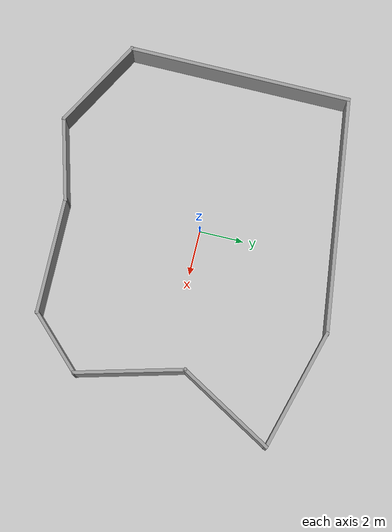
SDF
<?xml version='1.0'?>
<sdf version='1.7'>
  <model name='new_world'>
    <pose>0.899912 -0.207322 0 0 -0 0</pose>
    <link name='Wall_0'>
      <collision name='Wall_0_Collision'>
        <geometry>
          <box>
            <size>10 0.15 2.5</size>
          </box>
        </geometry>
        <pose>0 0 1.25 0 -0 0</pose>
      </collision>
      <visual name='Wall_0_Visual'>
        <pose>0 0 1.25 0 -0 0</pose>
        <geometry>
          <box>
            <size>10 0.15 2.5</size>
          </box>
        </geometry>
        <material>
          <script>
            <uri>file://media/materials/scripts/gazebo.material</uri>
            <name>Gazebo/Grey</name>
          </script>
          <ambient>1 1 1 1</ambient>
        </material>
        <meta>
          <layer>0</layer>
        </meta>
      </visual>
      <pose>-7.85315 0.376233 0 0 -0 1.5708</pose>
    </link>
    <link name='Wall_2'>
      <collision name='Wall_2_Collision'>
        <geometry>
          <box>
            <size>4.5 0.15 2.5</size>
          </box>
        </geometry>
        <pose>0 0 1.25 0 -0 0</pose>
      </collision>
      <visual name='Wall_2_Visual'>
        <pose>0 0 1.25 0 -0 0</pose>
        <geometry>
          <box>
            <size>4.5 0.15 2.5</size>
          </box>
        </geometry>
        <material>
          <script>
            <uri>file://media/materials/scripts/gazebo.material</uri>
            <name>Gazebo/Grey</name>
          </script>
          <ambient>1 1 1 1</ambient>
        </material>
        <meta>
          <layer>0</layer>
        </meta>
      </visual>
      <pose>-5.96955 -5.63627 0 0 -0 -0.523599</pose>
    </link>
    <link name='Wall_3'>
      <collision name='Wall_3_Collision'>
        <geometry>
          <box>
            <size>3.75 0.15 2.5</size>
          </box>
        </geometry>
        <pose>0 0 1.25 0 -0 0</pose>
      </collision>
      <visual name='Wall_3_Visual'>
        <pose>0 0 1.25 0 -0 0</pose>
        <geometry>
          <box>
            <size>3.75 0.15 2.5</size>
          </box>
        </geometry>
        <material>
          <script>
            <uri>file://media/materials/scripts/gazebo.material</uri>
            <name>Gazebo/Grey</name>
          </script>
          <ambient>1 1 1 1</ambient>
        </material>
        <meta>
          <layer>0</layer>
        </meta>
      </visual>
      <pose>-2.34727 -6.25789 0 0 -0 0.261799</pose>
    </link>
    <link name='Wall_4'>
      <collision name='Wall_4_Collision'>
        <geometry>
          <box>
            <size>5.25 0.15 2.5</size>
          </box>
        </geometry>
        <pose>0 0 1.25 0 -0 0</pose>
      </collision>
      <visual name='Wall_4_Visual'>
        <pose>0 0 1.25 0 -0 0</pose>
        <geometry>
          <box>
            <size>5.25 0.15 2.5</size>
          </box>
        </geometry>
        <material>
          <script>
            <uri>file://media/materials/scripts/gazebo.material</uri>
            <name>Gazebo/Grey</name>
          </script>
          <ambient>1 1 1 1</ambient>
        </material>
        <meta>
          <layer>0</layer>
        </meta>
      </visual>
      <pose>1.94139 -5.79202 0 0 -0 0</pose>
    </link>
    <link name='Wall_5'>
      <collision name='Wall_5_Collision'>
        <geometry>
          <box>
            <size>3.25 0.15 2.5</size>
          </box>
        </geometry>
        <pose>0 0 1.25 0 -0 0</pose>
      </collision>
      <visual name='Wall_5_Visual'>
        <pose>0 0 1.25 0 -0 0</pose>
        <geometry>
          <box>
            <size>3.25 0.15 2.5</size>
          </box>
        </geometry>
        <material>
          <script>
            <uri>file://media/materials/scripts/gazebo.material</uri>
            <name>Gazebo/Grey</name>
          </script>
          <ambient>1 1 1 1</ambient>
        </material>
        <meta>
          <layer>0</layer>
        </meta>
      </visual>
      <pose>5.58741 -4.696 0 0 -0 0.785398</pose>
    </link>
    <link name='Wall_6'>
      <collision name='Wall_6_Collision'>
        <geometry>
          <box>
            <size>5 0.15 2.5</size>
          </box>
        </geometry>
        <pose>0 0 1.25 0 -0 0</pose>
      </collision>
      <visual name='Wall_6_Visual'>
        <pose>0 0 1.25 0 -0 0</pose>
        <geometry>
          <box>
            <size>5 0.15 2.5</size>
          </box>
        </geometry>
        <material>
          <script>
            <uri>file://media/materials/scripts/gazebo.material</uri>
            <name>Gazebo/Grey</name>
          </script>
          <ambient>1 1 1 1</ambient>
        </material>
        <meta>
          <layer>0</layer>
        </meta>
      </visual>
      <pose>6.05579 -1.25762 0 0 -0 1.8326</pose>
    </link>
    <link name='Wall_7'>
      <collision name='Wall_7_Collision'>
        <geometry>
          <box>
            <size>5 0.15 2.5</size>
          </box>
        </geometry>
        <pose>0 0 1.25 0 -0 0</pose>
      </collision>
      <visual name='Wall_7_Visual'>
        <pose>0 0 1.25 0 -0 0</pose>
        <geometry>
          <box>
            <size>5 0.15 2.5</size>
          </box>
        </geometry>
        <material>
          <script>
            <uri>file://media/materials/scripts/gazebo.material</uri>
            <name>Gazebo/Grey</name>
          </script>
          <ambient>1 1 1 1</ambient>
        </material>
        <meta>
          <layer>0</layer>
        </meta>
      </visual>
      <pose>6.64065 3.18486 0 0 -0 1.0472</pose>
    </link>
    <link name='Wall_8'>
      <collision name='Wall_8_Collision'>
        <geometry>
          <box>
            <size>5.75 0.15 2.5</size>
          </box>
        </geometry>
        <pose>0 0 1.25 0 -0 0</pose>
      </collision>
      <visual name='Wall_8_Visual'>
        <pose>0 0 1.25 0 -0 0</pose>
        <geometry>
          <box>
            <size>5.75 0.15 2.5</size>
          </box>
        </geometry>
        <material>
          <script>
            <uri>file://media/materials/scripts/gazebo.material</uri>
            <name>Gazebo/Grey</name>
          </script>
          <ambient>1 1 1 1</ambient>
        </material>
        <meta>
          <layer>0</layer>
        </meta>
      </visual>
      <pose>5.14856 6.00967 0 0 -0 2.87979</pose>
    </link>
    <link name='Wall_9'>
      <collision name='Wall_9_Collision'>
        <geometry>
          <box>
            <size>10.5464 0.15 2.5</size>
          </box>
        </geometry>
        <pose>0 0 1.25 0 -0 0</pose>
      </collision>
      <visual name='Wall_9_Visual'>
        <pose>0 0 1.25 0 -0 0</pose>
        <geometry>
          <box>
            <size>10.5464 0.15 2.5</size>
          </box>
        </geometry>
        <material>
          <script>
            <uri>file://media/materials/scripts/gazebo.material</uri>
            <name>Gazebo/Grey</name>
          </script>
          <ambient>1 1 1 1</ambient>
        </material>
        <meta>
          <layer>0</layer>
        </meta>
      </visual>
      <pose>-2.70459 6.0178 0 0 -0 -3.0033</pose>
    </link>
    <static>1</static>
  </model>
</sdf>
